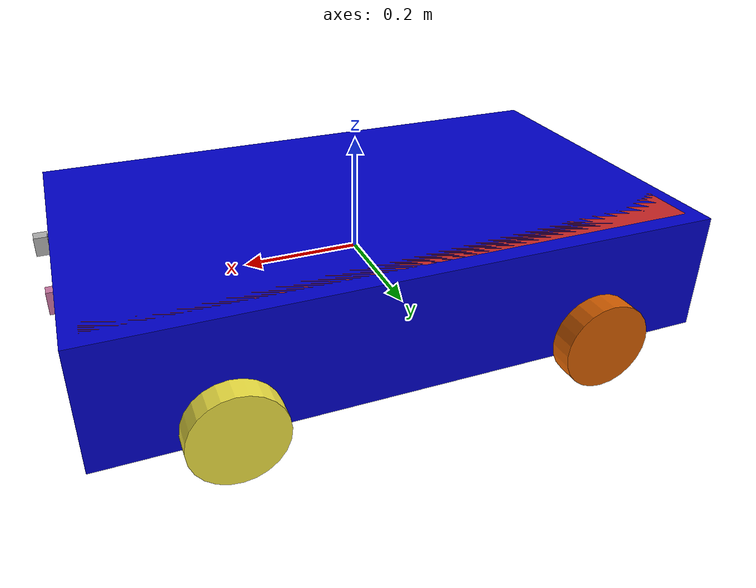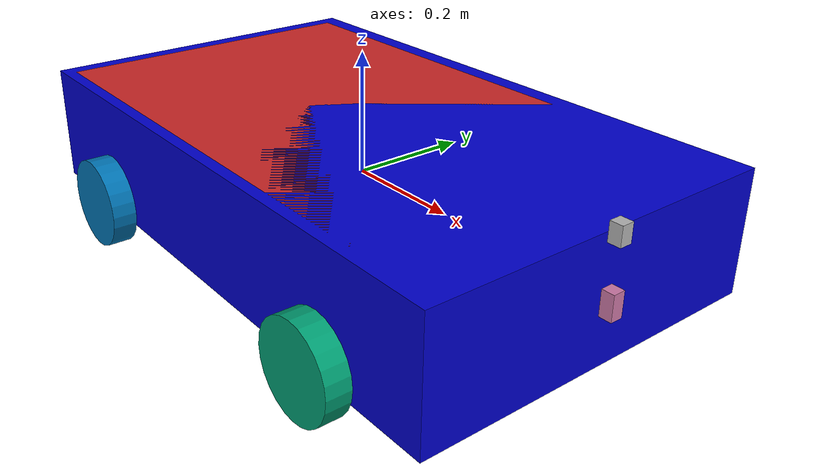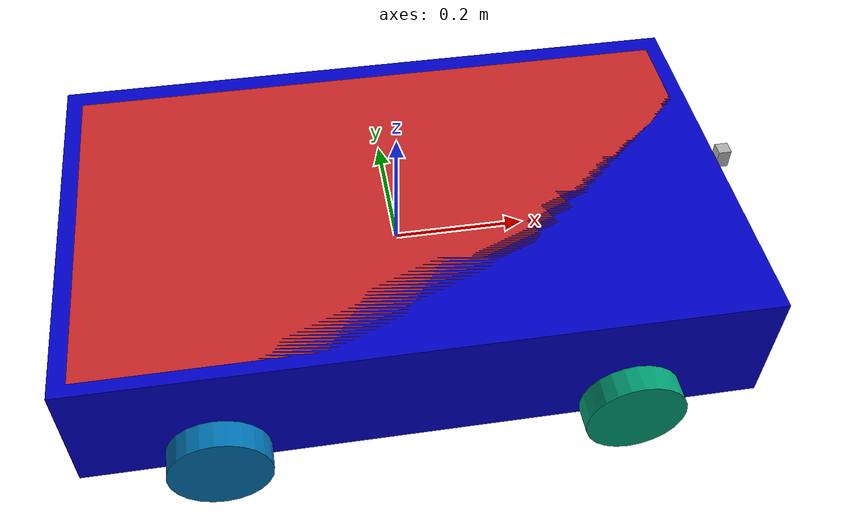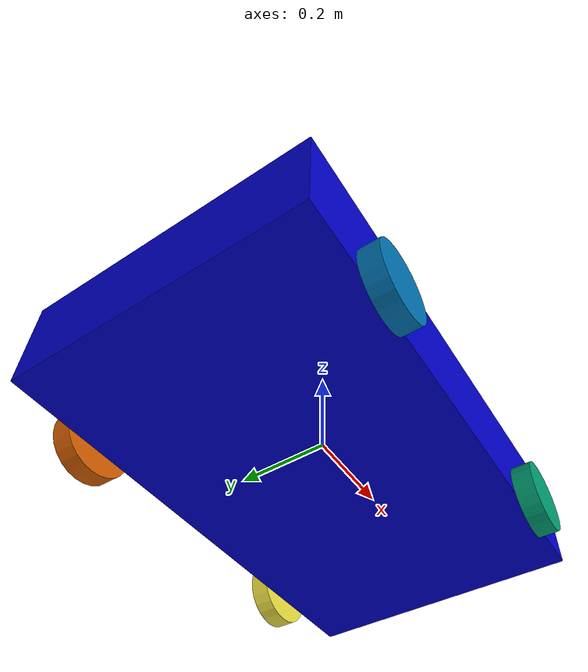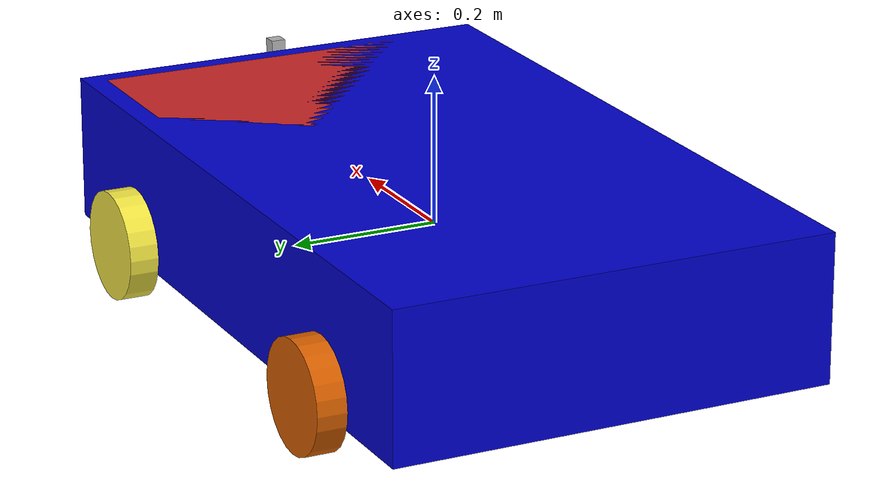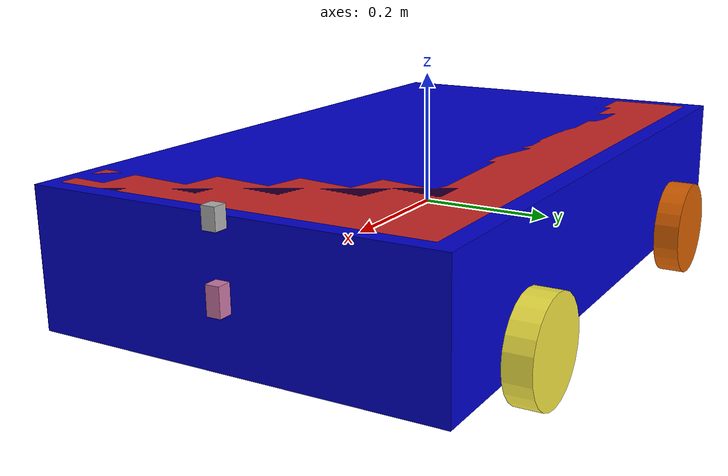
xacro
<?xml version="1.0"?>

<robot xmlns:xacro="http://www.ros.org/wiki/xacro" name="myrobot">

    <xacro:property name="base_width" value="1"/>
    <xacro:property name="base_len" value="0.6"/>
    <xacro:property name="base_height" value="0.2"/>
    <xacro:property name="base_distance_from_ground" value="0.05"/>
    <xacro:include filename="$(find myrobot_description)/urdf/robot.gazebo.xml"/>

    <!--Color Properties-->

    <material name="blue">
        <color rgba="0 0 0.8 1"/>
    </material>
    <material name="black">
        <color rgba="0 0 0 1"/>
    </material>
    <material name="white">
        <color rgba="1 1 1 1"/>
    </material>
    <material name="orange">
        <color rgba="0.5 0.2 0.2 1"/>
    </material>
    <!--Interial macros-->
    <xacro:macro name="cylinder_inertia" params="m r h">
        <inertial>
            <mass value="${m}"/>
            <inertia ixx="${m*(3*r*r+h*h)/12}" ixy="0" ixz="0" iyy="${m*(3*r*r+h*h)/12}" iyz="0" izz="${m*r*r/2}"/>
        </inertial>
    </xacro:macro>

    <xacro:macro name="box_inertia" params="m w h d">
        <inertial>
            <mass value="${m}"/>
            <inertia ixx="${m / 12.0 * (d*d + h*h)}" ixy="0.0" ixz="0.0" iyy="${m / 12.0 * (w*w + h*h)}" iyz="0.0"
                     izz="${m / 12.0 * (w*w + d*d)}"/>
        </inertial>
    </xacro:macro>

    <link name="base_link">
        <xacro:box_inertia m="1" w="${base_len}" h="${base_width}" d="${base_height}"/>
        <visual>
            <geometry>
                <box size="${base_width} ${base_len} ${base_height}"/>
            </geometry>
            <material name="blue"/>
        </visual>
        <collision>
            <geometry>
                <box size="${base_width} ${base_len} ${base_height}"/>
            </geometry>
        </collision>

    </link>

    <link name="base_footprint"/>

    <joint name="base_footprint_joint" type="fixed">
        <origin xyz="0 0 ${0 - base_distance_from_ground - base_height/2}" rpy="0 0 0"/>
        <parent link="base_link"/>
        <child link="base_footprint"/>
    </joint>

    <xacro:include filename="$(find myrobot_description)/urdf/wheel.urdf.xacro"/>
    <xacro:wheel prefix="front_right" reflect_y="-1" reflect_x="1"/>
    <xacro:wheel prefix="front_left" reflect_y="1" reflect_x="1"/>
    <xacro:wheel prefix="back_right" reflect_y="-1" reflect_x="-1"/>
    <xacro:wheel prefix="back_left" reflect_y="1" reflect_x="-1"/>

    <xacro:include filename="$(find myrobot_description)/urdf/laser_scanner.urdf.xacro"/>
    <xacro:laser_scanner/>

    <xacro:include filename="$(find myrobot_description)/urdf/camera.urdf.xacro"/>
    <xacro:camera_link/>

    <link name="elevator">
    <inertial>
        <origin rpy="0 0 0" xyz="-2.7755575615628914e-15 -0.0022800822836666623 0.09050102854580892"/>
        <mass value="8.994467062407036"/>
        <inertia ixx="0.120393" ixy="-0.0" ixz="-0.0" iyy="0.325419" iyz="0.000697" izz="0.415842"/>
    </inertial>
    <visual>
        <origin rpy="0 0 0" xyz="-0.5 -0.305 -0.075"/>
        <geometry>
        <mesh filename="package://myrobot_description/meshes/elevator_1.stl" scale="0.001 0.001 0.001"/>
        </geometry>
        <material name="red"/>
    </visual>
    <collision>
        <origin rpy="0 0 0" xyz="-0.5 -0.305 -0.075"/>
        <geometry>
        <mesh filename="package://myrobot_description/meshes/elevator_1.stl" scale="0.001 0.001 0.001"/>
        </geometry>
    </collision>
    </link>

    <joint name="elevator_joint" type="prismatic">
    <origin rpy="0 0 0" xyz="0.0 0.0 -0.025"/>
    <parent link="base_link"/>
    <child link="elevator"/>
    <axis xyz="0.0 0.0 1.0"/>
    <limit effort="100" lower="0.0" upper="0.1" velocity="0.5"/>
    </joint>

	<!-- Transmission is important to link the joints and the controller (see rb1_control/config/rb1_control.yaml)-->
		<transmission name="elevator_platform_trans">
			<type>transmission_interface/SimpleTransmission</type>
			<joint name="elevator_joint">
				<!-- for the gazebo plugin -->
				<!-- for ros control controller -->
				<hardwareInterface>hardware_interface/VelocityJointInterface</hardwareInterface>
			</joint>
			<actuator name="elevator_platform_joint_motor">
				<hardwareInterface>hardware_interface/VelocityJointInterface</hardwareInterface>
				<mechanicalReduction>1</mechanicalReduction>
			</actuator>
		</transmission>

</robot>

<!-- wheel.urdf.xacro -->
<robot xmlns:xacro="http://www.ros.org/wiki/xacro" name="wheel">

    <xacro:property name="wheel_radius" value="0.075"/>
    <xacro:property name="wheel_length" value="0.04"/>
    <xacro:macro name="wheel" params="prefix reflect_x reflect_y">

        <link name="${prefix}_wheel">
            <visual>
                <origin xyz="0 0 0" rpy="1.57 0 0"/>
                <geometry>
                    <cylinder radius="${wheel_radius}" length="${wheel_length}"/>
                </geometry>
            </visual>
            <collision>
                <origin xyz="0 0 0" rpy="1.57 0 0"/>
                <geometry>
                    <cylinder radius="${wheel_radius}" length="${wheel_length}"/>
                </geometry>
            </collision>
            <xacro:cylinder_inertia m="1" r="${wheel_radius}" h="${wheel_length}"/>
        </link>

        <joint name="${prefix}_wheel_joint" type="continuous">
            <axis xyz="0 1 0" rpy="0 0 0"/>
            <parent link="base_link"/>
            <child link="${prefix}_wheel"/>
            <origin xyz="${0.3 * reflect_x} ${(base_len/2 + wheel_length/2) * reflect_y} ${wheel_radius - base_distance_from_ground - (base_height/2)}"
                    rpy="0 0 0"/>
        </joint>

        <transmission name="${prefix}_wheel_trans" type="SimpleTransmission">
            <type>transmission_interface/SimpleTransmission</type>
            <actuator name="${prefix}_wheel_motor">
                <mechanicalReduction>1</mechanicalReduction>
            </actuator>
            <joint name="${prefix}_wheel_joint">
                <hardwareInterface>hardware_interface/VelocityJointInterface</hardwareInterface>
            </joint>
        </transmission>

    </xacro:macro>

</robot>

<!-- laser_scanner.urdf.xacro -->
<robot xmlns:xacro="http://www.ros.org/wiki/xacro" name="laser_scanner">
<xacro:property name="laser_width" value="0.02"/>
<xacro:property name="laser_height" value="0.04"/>
<xacro:property name="laser_length" value="0.02"/>
<xacro:macro name="laser_scanner">

    <link name="laser_scanner">
        <visual>
            <geometry>
                <box size="${laser_width} ${laser_length} ${laser_height}"/>
            </geometry>
        </visual>

        <collision>
            <geometry>
                <box size="${laser_width} ${laser_length} ${laser_height}"/>
            </geometry>
        </collision>
        <xacro:box_inertia m="1" w="${laser_length}" h="${laser_width}" d="${laser_height}"/>
    </link>

    <joint name="laser_scanner_joint" type="fixed">
        <parent link="base_link"/>
        <child link="laser_scanner"/>
        <origin rpy="0.0 0.0 0.0" xyz="${base_width/2 + laser_width/2} 0 0"/>

    </joint>

</xacro:macro>
</robot>

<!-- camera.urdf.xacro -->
<robot xmlns:xacro="http://www.ros.org/wiki/xacro" name="camera_link">
    <xacro:property name="camera_width" value="0.02"/>
    <xacro:property name="camera_height" value="0.03"/>
    <xacro:property name="camera_length" value="0.02"/>
    <xacro:macro name="camera_link">

        <link name="camera_link">
            <visual>
                <geometry>
                    <box size="${camera_width} ${camera_length} ${camera_height}"/>
                </geometry>
            </visual>

            <collision>
                <geometry>
                    <box size="${camera_width} ${camera_height} ${camera_height}"/>
                </geometry>
            </collision>
            <xacro:box_inertia m="1" w="${camera_length}" h="${camera_width}" d="${camera_height}"/>
        </link>

        <joint name="camera_joint" type="fixed">
            <parent link="base_link"/>
            <child link="camera_link"/>
            <origin rpy="0.0 0.0 0.0" xyz="${base_width/2 + camera_width/2} 0.0 ${base_height/2}"/>

        </joint>

    </xacro:macro>
</robot>
